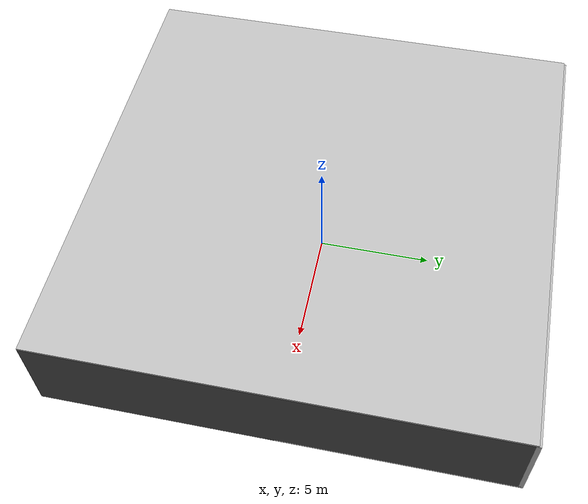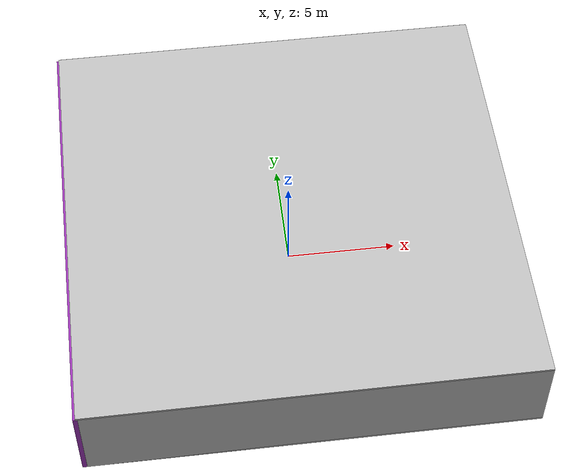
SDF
<sdf version="1.4">
 <world name="default">
  <physics type="ode">
   <max_step_size>0.001</max_step_size>
   <real_time_factor>1</real_time_factor>
   <real_time_update_rate>1000</real_time_update_rate>
   <gravity>0 0 -9.8</gravity>
  </physics>
  <scene><ambient>0.4 0.4 0.4 1</ambient><background>0.7 0.7 0.7 1</background><shadows>1</shadows></scene>
  <model name="Surrounding">
   <static>1</static>
   <link name="Ceiling">
    <collision name="Ceiling_Collision"><geometry><box><size>20 20 0.1</size></box></geometry></collision>
    <visual name="Ceiling_Visual">
     <geometry><box><size>20 20 0.1</size></box></geometry>
     <material>
      <script><uri>file://media/materials/scripts/gazebo.material</uri><name>Gazebo/JointAnchor</name></script>
     </material>
    </visual>
    <pose>0 0 4.05 0 0 0</pose>
   </link>
   <link name="Wall_South">
    <collision name="Wall_South_Collision">
     <geometry><box><size>20 0 4</size></box></geometry>
     <pose>0 0 2 0 -0 0</pose>
    </collision>
    <visual name="Wall_South_Visual">
     <pose>0 0 2 0 -0 0</pose>
     <geometry><box><size>20 0 4</size></box></geometry>
     <material>
      <script><uri>file://media/materials/scripts/gazebo.material</uri><name>Gazebo/Pioneer2Body</name></script>
     </material>
    </visual>
    <velocity_decay><linear>0</linear><angular>0</angular></velocity_decay>
    <pose>0 -10 0 0 -0 0</pose>
   </link>
   <link name="Wall_East">
    <collision name="Wall_21_Collision">
     <geometry><box><size>20 0 4</size></box></geometry>
     <pose>0 0 2 0 -0 0</pose>
    </collision>
    <visual name="Wall_21_Visual">
     <pose>0 0 2 0 -0 0</pose>
     <geometry><box><size>20 0 4</size></box></geometry>
     <material>
      <script><uri>file://media/materials/scripts/gazebo.material</uri><name>Gazebo/Road</name></script>
     </material>
    </visual>
    <velocity_decay><linear>0</linear><angular>0</angular></velocity_decay>
    <pose>10 0 0 0 -0 1.5708</pose>
   </link>
   <link name="Wall_North">
    <collision name="Wall_22_Collision">
     <geometry><box><size>20 0.2 4</size></box></geometry>
     <pose>0 0 2 0 -0 0</pose>
    </collision>
    <visual name="Wall_22_Visual">
     <pose>0 0 2 0 -0 0</pose>
     <geometry><box><size>20 0.2 4</size></box></geometry>
     <material>
      <script><uri>file://media/materials/scripts/gazebo.material</uri><name>Gazebo/CloudySky</name></script>
     </material>
    </visual>
    <velocity_decay><linear>0</linear><angular>0</angular></velocity_decay>
    <pose>0 10 0 0 -0 0</pose>
   </link>
   <link name="Wall_West">
    <collision name="Wall_23_Collision">
     <geometry><box><size>20 0.2 4</size></box></geometry>
     <pose>0 0 2 0 -0 0</pose>
    </collision>
    <visual name="Wall_23_Visual">
     <pose>0 0 2 0 -0 0</pose>
     <geometry><box><size>20 0.2 4</size></box></geometry>
     <material>
      <script><uri>file://media/materials/scripts/gazebo.material</uri><name>Gazebo/Purple</name></script>
     </material>
    </visual>
    <velocity_decay><linear>0</linear><angular>0</angular></velocity_decay>
    <pose>-10 0 0 0 0 -1.5708</pose>
   </link>
   <link name="Ground_link">
    <collision name="collision">
     <pose>0 0 .05 0 -0 0</pose>
     <geometry><box><size>20 20 0.1</size></box></geometry>
    </collision>
    <visual name="visual">
     <pose>0 0 .05 0 -0 0</pose>
     <geometry><box><size>20 20 0.1</size></box></geometry>
     <material>
      <script><uri>file://media/materials/scripts/gazebo.material</uri><name>Gazebo/LightOn</name></script>
     </material>
    </visual>
   </link>
   <static>1</static>
  </model>
  <spherical_coordinates>
   <surface_model>EARTH_WGS84</surface_model>
   <latitude_deg>0</latitude_deg>
   <longitude_deg>0</longitude_deg>
   <elevation>0</elevation>
   <heading_deg>0</heading_deg>
  </spherical_coordinates>
  <light name="lightball_0" type="diffuse">
   <diffuse>0.8 0.8 0.8 1</diffuse>
   <specular>0.2 0.2 0.2 1</specular>
   <attenuation>
    <range>100</range>
    <constant>0.7</constant>
    <linear>0.01</linear>
    <quadratic>0.001</quadratic>
   </attenuation>
   <direction>-0.5 0.1 -0.9</direction>
   <pose>-5.69194507521 -2.67317184559 3.69162898872 0 0 0</pose>
  </light>
  <light name="lightball_1" type="diffuse">
   <diffuse>0.8 0.8 0.8 1</diffuse>
   <specular>0.2 0.2 0.2 1</specular>
   <attenuation>
    <range>100</range>
    <constant>0.7</constant>
    <linear>0.01</linear>
    <quadratic>0.001</quadratic>
   </attenuation>
   <direction>-0.5 0.1 -0.9</direction>
   <pose>-3.73923951035 -3.76008348267 1.48931490412 0 0 0</pose>
  </light>
  <light name="lightball_2" type="diffuse">
   <diffuse>0.8 0.8 0.8 1</diffuse>
   <specular>0.2 0.2 0.2 1</specular>
   <attenuation>
    <range>100</range>
    <constant>0.7</constant>
    <linear>0.01</linear>
    <quadratic>0.001</quadratic>
   </attenuation>
   <direction>-0.5 0.1 -0.9</direction>
   <pose>3.08418863737 -9.9746969953 1.66340190648 0 0 0</pose>
  </light>
  <light name="lightball_3" type="diffuse">
   <diffuse>0.8 0.8 0.8 1</diffuse>
   <specular>0.2 0.2 0.2 1</specular>
   <attenuation>
    <range>100</range>
    <constant>0.7</constant>
    <linear>0.01</linear>
    <quadratic>0.001</quadratic>
   </attenuation>
   <direction>-0.5 0.1 -0.9</direction>
   <pose>-0.142318161518 -6.48724380811 2.04762191535 0 0 0</pose>
  </light>
  <include>
   <uri>model://textured_shapes</uri>
   <pose>-6.31205723235 7.00620026272 0 0 0 0.212747394606</pose>
  </include>
  <include><uri>model://cabinet</uri><pose>-4.29957787511 0.947158306307 0 0 0 0.0404502642626</pose></include>
 </world>
</sdf>

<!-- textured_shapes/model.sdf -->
<sdf version="1.6">
  <model name="textured_shapes">
    <pose>0 0 0.5 0 0 0</pose>
    <link name="box">
      <pose>0 -1.5 0 0 0 0</pose>
      <collision name="collision">
        <geometry>
          <box>
            <size>1 1 1</size>
          </box>
        </geometry>
      </collision>
      <visual name="visual">
        <geometry>
          <box>
            <size>1 1 1</size>
          </box>
        </geometry>
        <material>
          <script>
            <uri>model://../model_source/models/textured_shapes/materials/scripts</uri>
            <uri>model://../model_source/models/textured_shapes/materials/textures</uri>
            <name>TexturedShape/Squares</name>
          </script>
        </material>
      </visual>
    </link>
    <link name="sphere">
      <collision name="collision">
        <geometry>
          <sphere>
            <radius>0.5</radius>
          </sphere>
        </geometry>
      </collision>
      <visual name="visual">
        <geometry>
          <sphere>
            <radius>0.5</radius>
          </sphere>
        </geometry>
        <material>
          <script>
            <uri>model://../model_source/models/textured_shapes/materials/scripts</uri>
            <uri>model://../model_source/models/textured_shapes/materials/textures</uri>
            <name>TexturedShape/Squares</name>
          </script>
        </material>
      </visual>
    </link>
    <link name="cylinder">
      <pose>0 1.5 0 0 0 0</pose>
      <collision name="collision">
        <geometry>
          <cylinder>
            <radius>0.5</radius>
            <length>1</length>
          </cylinder>
        </geometry>
      </collision>
      <visual name="visual">
        <geometry>
          <cylinder>
            <radius>0.5</radius>
            <length>1</length>
          </cylinder>
        </geometry>
        <material>
          <script>
            <uri>model://../model_source/models/textured_shapes/materials/scripts</uri>
            <uri>model://../model_source/models/textured_shapes/materials/textures</uri>
            <name>TexturedShape/Squares</name>
          </script>
        </material>
      </visual>
    </link>
  </model>
</sdf>

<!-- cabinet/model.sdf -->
<sdf version="1.5">
  <model name="cabinet">
    <static>true</static>
    <link name="cabinet_bottom_plate">
      <inertial>
        <pose>0 0 -1 0 0 0</pose>
        <inertia>
          <ixx>2.050000</ixx>
          <ixy>0</ixy>
          <ixz>0</ixz>
          <iyy>2.050000</iyy>
          <iyz>0</iyz>
          <izz>2.050000</izz>
        </inertia>
        <mass>25.000000</mass>
      </inertial>
      <collision name="cabinet_bottom_plate_geom">
        <pose>0 0 0.010000 0 0 0</pose>
        <geometry>
          <box>
            <size>0.450000 0.450000 0.020000</size>
          </box>
        </geometry>
      </collision>
      <visual name="cabinet_bottom_plate_geom_visual">
        <pose>0 0 0.010000 0 0 0</pose>
        <geometry>
          <box>
            <size>0.450000 0.450000 0.020000</size>
          </box>
        </geometry>
        <material>
          <script>
            <uri>model://media/materials/scripts/gazebo.material</uri>
            <name>Gazebo/Wood</name>
          </script>
        </material>
      </visual>
      <collision name="cabinet_bottom_plate_geom_cabinet_back_plate">
        <pose>0.235000 0 0.510000 0 0 0</pose>
        <geometry>
          <box>
            <size>0.020000 0.450000 1.020000</size>
          </box>
        </geometry>
      </collision>
      <visual name="cabinet_bottom_plate_geom_cabinet_back_plate_visual">
        <pose>0.235000 0 0.510000 0 0 0</pose>
        <geometry>
          <box>
            <size>0.020000 0.450000 1.020000</size>
          </box>
        </geometry>
        <material>
          <script>
            <uri>model://media/materials/scripts/gazebo.material</uri>
            <name>Gazebo/Wood</name>
          </script>
        </material>
      </visual>
      <collision name="cabinet_bottom_plate_geom_cabinet_left_plate">
        <pose>0 0.235000 0.510000 0 0 0</pose>
        <geometry>
          <box>
            <size>0.450000 0.020000 1.020000</size>
          </box>
        </geometry>
      </collision>
      <visual name="cabinet_bottom_plate_geom_cabinet_left_plate_visual">
        <pose>0 0.235000 0.510000 0 0 0</pose>
        <geometry>
          <box>
            <size>0.450000 0.020000 1.020000</size>
          </box>
        </geometry>
        <material>
          <script>
            <uri>model://media/materials/scripts/gazebo.material</uri>
            <name>Gazebo/Wood</name>
          </script>
        </material>
      </visual>
      <collision name="cabinet_bottom_plate_geom_cabinet_middle_plate">
        <pose>0 0 0.510000 0 0 0</pose>
        <geometry>
          <box>
            <size>0.450000 0.450000 0.020000</size>
          </box>
        </geometry>
      </collision>
      <visual name="cabinet_bottom_plate_geom_cabinet_middle_plate_visual">
        <pose>0 0 0.510000 0 0 0</pose>
        <geometry>
          <box>
            <size>0.450000 0.450000 0.020000</size>
          </box>
        </geometry>
        <material>
          <script>
            <uri>model://media/materials/scripts/gazebo.material</uri>
            <name>Gazebo/Wood</name>
          </script>
        </material>
      </visual>
      <collision name="cabinet_bottom_plate_geom_cabinet_right_plate">
        <pose>0 -0.235000 0.510000 0 0 0</pose>
        <geometry>
          <box>
            <size>0.450000 0.020000 1.020000</size>
          </box>
        </geometry>
      </collision>
      <visual name="cabinet_bottom_plate_geom_cabinet_right_plate_visual">
        <pose>0 -0.235000 0.510000 0 0 0</pose>
        <geometry>
          <box>
            <size>0.450000 0.020000 1.020000</size>
          </box>
        </geometry>
        <material>
          <script>
            <uri>model://media/materials/scripts/gazebo.material</uri>
            <name>Gazebo/Wood</name>
          </script>
        </material>
      </visual>
      <collision name="cabinet_bottom_plate_geom_cabinet_top_plate">
        <pose>0 0 1.010000 0 0 0</pose>
        <geometry>
          <box>
            <size>0.450000 0.450000 0.020000</size>
          </box>
        </geometry>
      </collision>
      <visual name="cabinet_bottom_plate_geom_cabinet_top_plate_visual">
        <pose>0 0 1.010000 0 0 0</pose>
        <geometry>
          <box>
            <size>0.450000 0.450000 0.020000</size>
          </box>
        </geometry>
        <material>
          <script>
            <uri>model://media/materials/scripts/gazebo.material</uri>
            <name>Gazebo/Wood</name>
          </script>
        </material>
      </visual>
    </link>
  </model>
</sdf>
